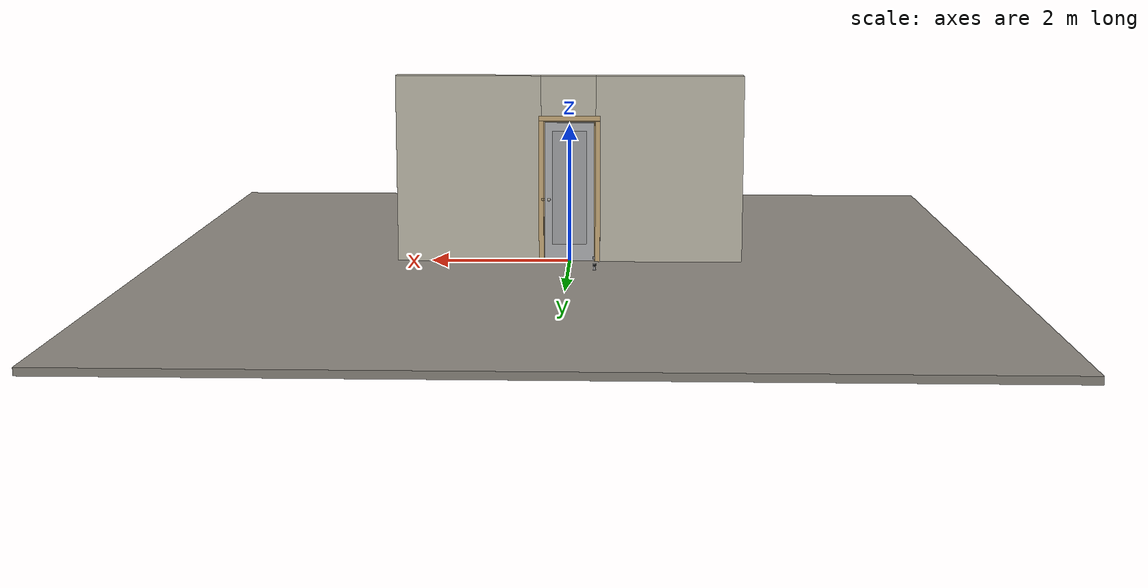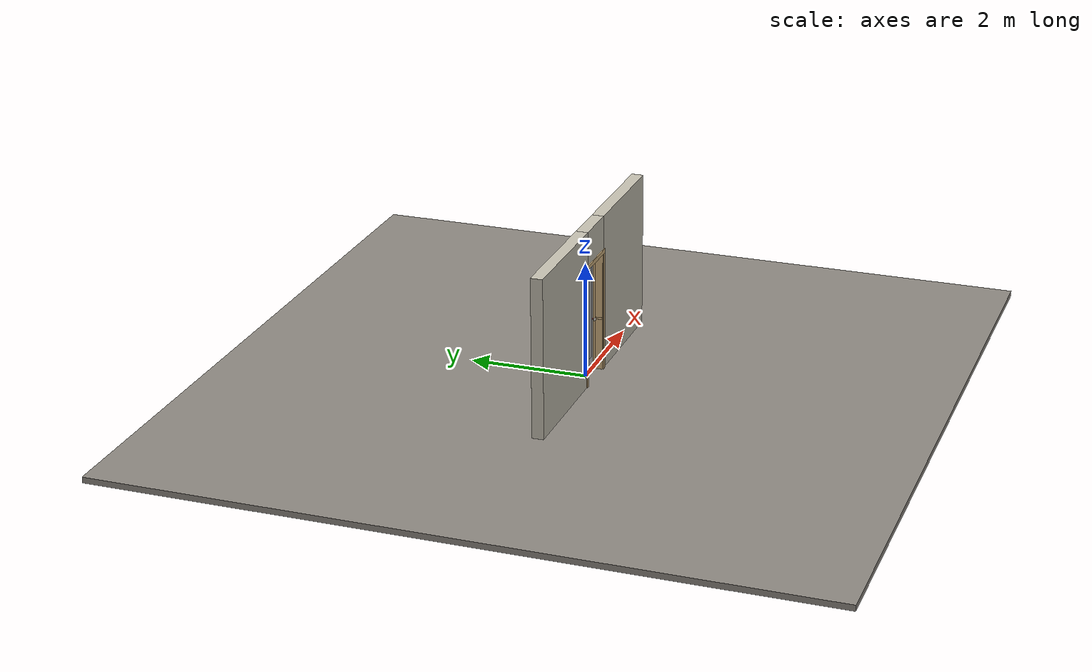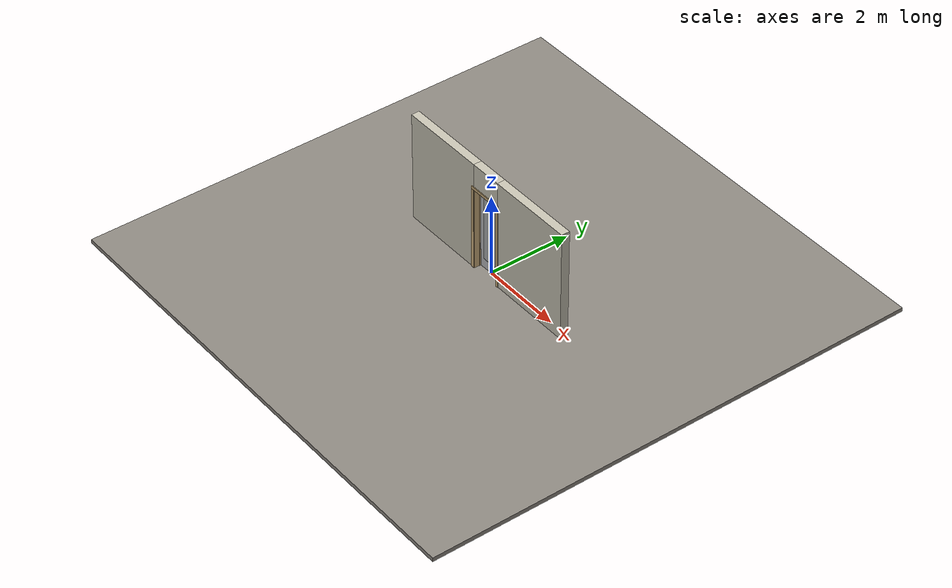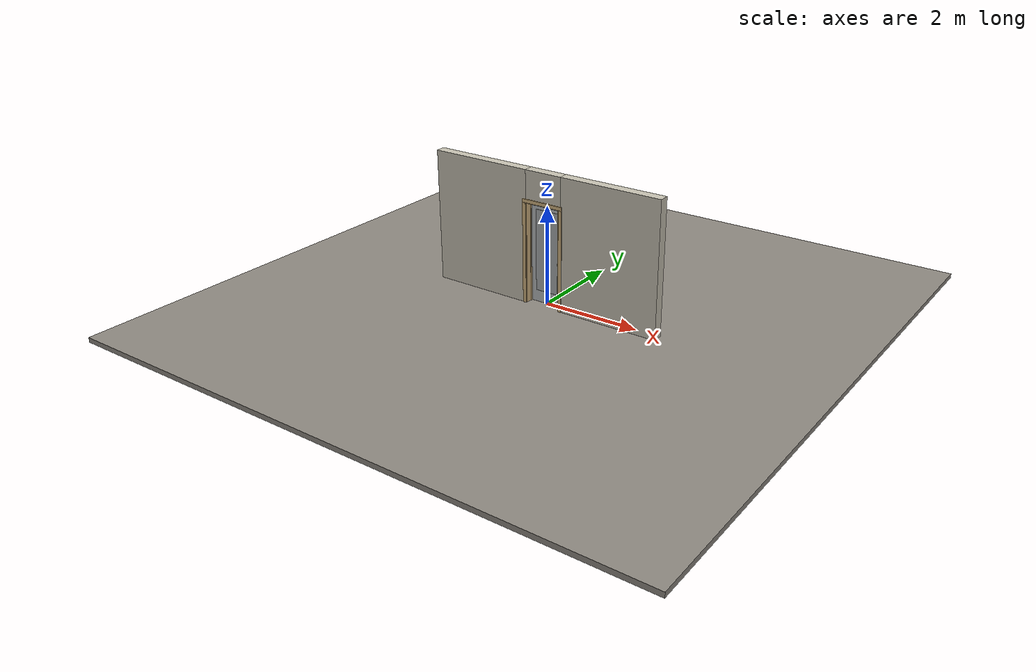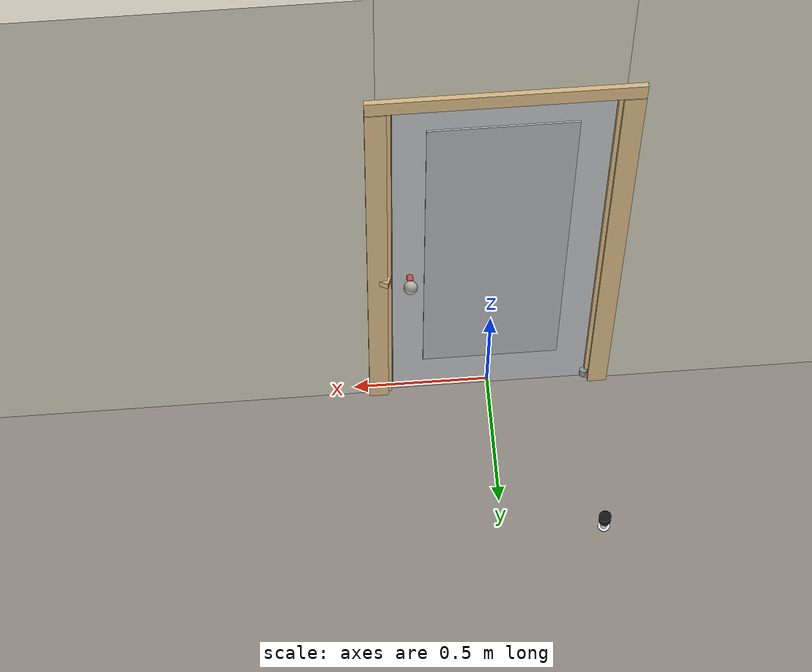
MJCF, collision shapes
<?xml version="1.0" ?>
<mujoco model="db0728_swing_single_full">
  <compiler angle="radian" meshdir="../../hardware" texturedir="../../textures" autolimits="true" inertiafromgeom="false"/>
  <option timestep="0.002" integrator="implicitfast" cone="elliptic" impratio="10" noslip_iterations="3">
    <flag multiccd="enable"/>
  </option>
  <size memory="16M"/>
  <default>
    <geom condim="4" solref="0.005 1" solimp="0.95 0.99 0.001"/>
    <joint solreflimit="0.005 1" solimplimit="0.95 0.99 0.001"/>
    <tendon solreflimit="0.005 1"/>
    <equality solref="0.002 1"/>
  </default>
  <visual>
    <headlight ambient="0.4 0.4 0.4" diffuse="0.7 0.7 0.7" specular="0.2 0.2 0.2"/>
    <quality shadowsize="4096"/>
    <map znear="0.01" zfar="60"/>
  </visual>
  <asset>
    <mesh name="hinge_c20a5829de" file="hinge_c20a5829de.obj"/>
    <mesh name="hinge_jamb_20499e6581" file="hinge_jamb_20499e6581.obj"/>
    <mesh name="knob_248d825e64" file="knob_248d825e64.obj"/>
    <mesh name="knob_d1888f6f03" file="knob_d1888f6f03.obj"/>
    <material name="mat_floor" rgba="0.55 0.53 0.5 1" specular="0.2" shininess="0.15" reflectance="0"/>
    <material name="mat_wall" rgba="0.78 0.76 0.7 1" specular="0.2" shininess="0.1" reflectance="0"/>
    <material name="mat_hinge" rgba="0.55 0.56 0.58 1" specular="0.8" shininess="0.55" reflectance="0.4"/>
    <material name="mat_leaf" rgba="0.72 0.73 0.74 1" specular="0.2" shininess="0.52" reflectance="0"/>
    <material name="mat_leaf_panel" rgba="0.662 0.672 0.681 1" specular="0.2" shininess="0.52" reflectance="0"/>
    <material name="mat_op_nickel_satin" rgba="0.72 0.7 0.66 1" specular="0.8" shininess="0.65" reflectance="0.4"/>
    <material name="mat_trim" rgba="0.85 0.66 0.3 1" specular="0.8" shininess="0.75" reflectance="0.4"/>
    <material name="mat_bolt" rgba="0.85 0.66 0.3 1" specular="0.8" shininess="0.75" reflectance="0.4"/>
    <material name="mat_frame" rgba="0.82 0.7 0.5 1" specular="0.2" shininess="0.45" reflectance="0"/>
    <material name="mat_bumper_stop" rgba="0.08 0.08 0.08 1" specular="0.2" shininess="0.1" reflectance="0"/>
    <material name="mat_stop_base" rgba="0.9 0.9 0.92 1" specular="0.8" shininess="0.9" reflectance="0.4"/>
    <texture name="skybox" type="skybox" builtin="gradient" rgb1="0.6 0.7 0.85" rgb2="0.9 0.92 0.95" width="256" height="256"/>
  </asset>
  <worldbody>
    <light name="sun" pos="1.5 -2.5 4" dir="-0.3 0.5 -0.8" directional="true" diffuse="0.8 0.8 0.8" specular="0.3 0.3 0.3" castshadow="true"/>
    <light name="fill" pos="-1.5 2.5 3" dir="0.3 -0.5 -0.7" directional="true" diffuse="0.35 0.35 0.4" castshadow="false"/>
    <camera name="robot_view" pos="0 -2.617687 1.734312" xyaxes="1 0 0 0 0.26963 0.962964" fovy="52"/>
    <camera name="far_view" pos="0 2.466687 1.734312" xyaxes="-1 0 0 0 -0.26963 0.962964" fovy="52"/>
    <camera name="iso" pos="1.932062 -2.210938 2.141063" xyaxes="0.741536 0.670913 0 -0.242917 0.268487 0.932151" fovy="46"/>
    <camera name="detail_handle" pos="0.475 -0.864 1.194" xyaxes="0.97561 0.219512 0 -0.070934 0.315262 0.94635" fovy="38"/>
    <geom name="floor" type="box" size="6 6 0.05" pos="0 0 -0.05" material="mat_floor" group="0" contype="1" conaffinity="1" friction="0.8 0.005 0.0001" density="2400"/>
    <geom name="wall_left" type="box" size="1.061 0.1 1.35" pos="-1.439 -0.0755 1.35" material="mat_wall" group="0" contype="1" conaffinity="1" friction="0.6 0.005 0.0001" density="800"/>
    <geom name="wall_right" type="box" size="1.046 0.1 1.35" pos="1.454 -0.0755 1.35" material="mat_wall" group="0" contype="1" conaffinity="1" friction="0.6 0.005 0.0001" density="800"/>
    <geom name="wall_header" type="box" size="0.393 0.1 0.303" pos="0.015 -0.0755 2.397" material="mat_wall" group="0" contype="1" conaffinity="1" friction="0.6 0.005 0.0001" density="800"/>
    <geom name="hinge_0_jamb" type="mesh" mesh="hinge_jamb_20499e6581" pos="-0.356 0.0245 0.259" quat="0 1 0 0" material="mat_hinge" group="1" contype="0" conaffinity="0" density="7850"/>
    <geom name="hinge_1_jamb" type="mesh" mesh="hinge_jamb_20499e6581" pos="-0.356 0.0245 1.8506" quat="0 1 0 0" material="mat_hinge" group="1" contype="0" conaffinity="0" density="7850"/>
    <geom name="jamb_hinge" type="box" size="0.0095 0.1 1.0225" pos="-0.3685 -0.0755 1.0225" material="mat_frame" group="0" contype="1" conaffinity="1" friction="0.6 0.005 0.0001" density="400"/>
    <geom name="strike_914_wall_n" type="box" size="0.0245 0.083825 0.0167" pos="0.3835 -0.091675 0.914" material="mat_frame" group="0" contype="1" conaffinity="1" friction="0.6 0.005 0.0001" density="400"/>
    <geom name="strike_914_wall_p" type="box" size="0.0245 0.008 0.0167" pos="0.3835 0.01585 0.914" material="mat_frame" group="0" contype="1" conaffinity="1" friction="0.6 0.005 0.0001" density="400"/>
    <geom name="strike_914_ramp" type="box" size="0.0245 0.01649 0.0167" pos="0.388136 0.028673 0.914" quat="0.977148 0 0 -0.212558" material="mat_frame" group="0" contype="1" conaffinity="1" friction="0.12 0.005 0.0001" density="400"/>
    <geom name="strike_914_back" type="box" size="0.01615 0.00785 0.0167" pos="0.39185 0 0.914" material="mat_frame" group="0" contype="1" conaffinity="1" friction="0.6 0.005 0.0001" density="400"/>
    <geom name="jamb_strike_0" type="box" size="0.0245 0.1 0.44865" pos="0.3835 -0.0755 0.44865" material="mat_frame" group="0" contype="1" conaffinity="1" friction="0.6 0.005 0.0001" density="400"/>
    <geom name="jamb_strike_1" type="box" size="0.0245 0.1 0.55715" pos="0.3835 -0.0755 1.48785" material="mat_frame" group="0" contype="1" conaffinity="1" friction="0.6 0.005 0.0001" density="400"/>
    <geom name="jamb_head" type="box" size="0.393 0.1 0.0095" pos="0.015 -0.0755 2.0545" material="mat_frame" group="0" contype="1" conaffinity="1" friction="0.6 0.005 0.0001" density="400"/>
    <geom name="head_stud" type="box" size="0.393 0.1 0.015" pos="0.015 -0.0755 2.079" material="mat_wall" group="0" contype="1" conaffinity="1" friction="0.6 0.005 0.0001" density="500"/>
    <geom name="stop_hinge" type="box" size="0.0055 0.016 1.0225" pos="-0.3535 -0.034 1.0225" material="mat_frame" group="0" contype="1" conaffinity="1" friction="0.6 0.005 0.0001" density="400"/>
    <geom name="stop_strike" type="box" size="0.0055 0.016 1.0225" pos="0.3535 -0.034 1.0225" material="mat_frame" group="0" contype="1" conaffinity="1" friction="0.6 0.005 0.0001" density="400"/>
    <geom name="stop_head" type="box" size="0.359 0.016 0.0055" pos="0 -0.034 2.0395" material="mat_frame" group="0" contype="1" conaffinity="1" friction="0.6 0.005 0.0001" density="400"/>
    <geom name="casing_l_n" type="box" size="0.035 0.008 1.032" pos="-0.408 -0.1835 1.0225" material="mat_frame" group="2" contype="0" conaffinity="0" density="400"/>
    <geom name="casing_r_n" type="box" size="0.035 0.008 1.032" pos="0.408 -0.1835 1.0225" material="mat_frame" group="2" contype="0" conaffinity="0" density="400"/>
    <geom name="casing_h_n" type="box" size="0.443 0.008 0.035" pos="0 -0.1835 2.094" material="mat_frame" group="2" contype="0" conaffinity="0" density="400"/>
    <geom name="casing_l_p" type="box" size="0.035 0.008 1.032" pos="-0.408 0.0325 1.0225" material="mat_frame" group="2" contype="0" conaffinity="0" density="400"/>
    <geom name="casing_r_p" type="box" size="0.035 0.008 1.032" pos="0.408 0.0325 1.0225" material="mat_frame" group="2" contype="0" conaffinity="0" density="400"/>
    <geom name="casing_h_p" type="box" size="0.443 0.008 0.035" pos="0 0.0325 2.094" material="mat_frame" group="2" contype="0" conaffinity="0" density="400"/>
    <geom name="door_stop_base" type="cylinder" size="0.022 0.003" pos="-0.372 0.62885 0.003" material="mat_stop_base" group="0" contype="1" conaffinity="1" friction="0.6 0.005 0.0001" density="7850"/>
    <geom name="door_stop_post" type="cylinder" size="0.012 0.0245" pos="-0.372 0.62885 0.0305" material="mat_stop_base" group="0" contype="1" conaffinity="1" friction="0.6 0.005 0.0001" density="7850"/>
    <geom name="door_stop_bumper" type="cylinder" size="0.022 0.02" pos="-0.372 0.62885 0.075" material="mat_bumper_stop" group="0" contype="1" conaffinity="1" friction="0.6 0.005 0.0001" density="1100"/>
    <site name="approach_point" pos="0 -1.5 0" quat="1 0 0 0" size="0.05" rgba="0.2 0.9 0.2 0.5" group="4"/>
    <site name="goal_point" pos="0 1.5 0" quat="1 0 0 0" size="0.05" rgba="0.2 0.9 0.2 0.5" group="4"/>
    <site name="door_plane_center" pos="0 0 1.0225" quat="1 0 0 0" size="0.02" rgba="0.2 0.9 0.2 0.5" group="4"/>
    <body name="leaf_riser" pos="-0.359 0 0">
      <inertial pos="0.003 0.0245 0.055" mass="0.174012" quat="0.707107 0 0.707107 0" diaginertia="0.000017053 0.00002732 0.00002732"/>
      <joint name="leaf_rise" type="slide" axis="0 0 1" limited="true" range="0 0.0176" damping="1" armature="0.5"/>
      <geom name="leaf_riser_marker" type="cylinder" size="0.014 0.018" pos="0.003 0.0245 0.055" material="mat_hinge" group="1" contype="0" conaffinity="0" density="7850"/>
      <body name="leaf" pos="0 0 0">
        <inertial pos="0.347685 0.000523 1.020834" mass="12.0294" quat="0.500675 0.498632 -0.501342 0.499348" diaginertia="0.539603406 4.204449372 4.741369754"/>
        <joint name="leaf_hinge" type="hinge" axis="0 0 1" pos="0.003 0.0245 0" limited="true" range="0 1.570796" damping="0.143782" frictionloss="6.304379" armature="0.02"/>
        <geom name="leaf_slab" type="box" size="0.3555 0.0175 1.0108" pos="0.3585 0 1.0198" material="mat_leaf" group="0" contype="1" conaffinity="1" friction="0.35 0.005 0.0001" density="1"/>
        <geom name="leaf_panel_0_n" type="box" size="0.2455 0.003 0.829072" pos="0.3585 -0.0205 1.080448" material="mat_leaf_panel" group="1" contype="0" conaffinity="0" density="1"/>
        <geom name="leaf_panel_0_p" type="box" size="0.2455 0.003 0.829072" pos="0.3585 0.0205 1.080448" material="mat_leaf_panel" group="1" contype="0" conaffinity="0" density="1"/>
        <geom name="hinge_0" type="mesh" mesh="hinge_c20a5829de" pos="0.003 0.0245 0.259" quat="0 1 0 0" material="mat_hinge" group="1" contype="0" conaffinity="0" density="7850"/>
        <geom name="hinge_1" type="mesh" mesh="hinge_c20a5829de" pos="0.003 0.0245 1.8506" quat="0 1 0 0" material="mat_hinge" group="1" contype="0" conaffinity="0" density="7850"/>
        <geom name="leaf_latch_bolt_faceplate" type="box" size="0.0006 0.01235 0.0267" pos="0.7134 0 0.914" material="mat_bolt" group="1" contype="0" conaffinity="0" density="8500"/>
        <site name="leaf_edge_mid" pos="0.714 0 1.0108" quat="1 0 0 0" size="0.02" rgba="0.2 0.9 0.2 0.5" group="4"/>
        <body name="leaf_handle" pos="0.654 0 0.914">
          <inertial pos="0 0.000216 0" mass="1.146661" quat="0.5 0.5 0.5 0.5" diaginertia="0.000312402 0.003728942 0.003728942"/>
          <joint name="leaf_handle_hinge" type="hinge" axis="0 -1 0" limited="true" range="0 0.07" damping="0.143613" frictionloss="0.038" stiffness="0.5" springref="-0.5" armature="0.01"/>
          <geom name="leaf_handle_spindle" type="cylinder" size="0.006 0.0255" pos="0 0 0" quat="0.707107 -0.707107 0 0" material="mat_op_nickel_satin" group="1" contype="0" conaffinity="0" density="7850"/>
          <geom name="leaf_handle_knob_n" type="mesh" mesh="knob_d1888f6f03" pos="0 -0.0175 0" quat="0.707107 0.707107 0 0" material="mat_op_nickel_satin" group="1" contype="0" conaffinity="0" density="3000"/>
          <geom name="leaf_handle_knob_col_n" type="sphere" size="0.0243" pos="0 -0.064 0" material="mat_op_nickel_satin" group="0" contype="1" conaffinity="1" friction="0.9 0.01 0.0001" density="3000"/>
          <geom name="leaf_handle_knob_neck_n" type="cylinder" size="0.011 0.012" pos="0 -0.0295 0" quat="0.707107 -0.707107 0 0" material="mat_op_nickel_satin" group="3" contype="1" conaffinity="1" rgba="0.8 0.3 0.3 0.25" friction="0.6 0.005 0.0001" density="3000"/>
          <geom name="leaf_handle_knob_p" type="mesh" mesh="knob_248d825e64" pos="0 0.0175 0" quat="-0.707107 0.707107 0 0" material="mat_op_nickel_satin" group="1" contype="0" conaffinity="0" density="3000"/>
          <geom name="leaf_handle_knob_col_p" type="sphere" size="0.0243" pos="0 0.064 0" material="mat_op_nickel_satin" group="0" contype="1" conaffinity="1" friction="0.9 0.01 0.0001" density="3000"/>
          <geom name="leaf_handle_knob_neck_p" type="cylinder" size="0.011 0.012" pos="0 0.0295 0" quat="0.707107 -0.707107 0 0" material="mat_op_nickel_satin" group="3" contype="1" conaffinity="1" rgba="0.8 0.3 0.3 0.25" friction="0.6 0.005 0.0001" density="3000"/>
          <site name="leaf_handle_grip_n" pos="0 -0.064 0" quat="1 0 0 0" size="0.012" rgba="0.2 0.9 0.2 0.5" group="4"/>
          <site name="leaf_handle_grip_p" pos="0 0.064 0" quat="1 0 0 0" size="0.012" rgba="0.2 0.9 0.2 0.5" group="4"/>
        </body>
        <body name="leaf_latch_bolt" pos="0.714 0 0.914">
          <inertial pos="-0.00865 0 0" mass="0.041419" quat="0.92388 -0.382683 0 0" diaginertia="0.000000798 0.000005598 0.000005598"/>
          <joint name="leaf_latch_bolt_slide" type="slide" axis="-1 0 0" limited="true" range="0 0.0127" damping="2" frictionloss="0.3" stiffness="300" springref="-0.008333" armature="0.1"/>
          <geom name="leaf_latch_bolt_capsule" type="capsule" size="0.00635 0.015" pos="-0.00865 0 0" quat="0.707107 0 0.707107 0" material="mat_bolt" group="0" contype="1" conaffinity="1" friction="0.2 0.005 0.0001" density="8500"/>
        </body>
      </body>
    </body>
  </worldbody>
  <tendon>
    <fixed name="leaf_latch_bolt_coupling" limited="true" range="0 10">
      <joint joint="leaf_latch_bolt_slide" coef="1"/>
      <joint joint="leaf_handle_hinge" coef="-0.015679"/>
    </fixed>
  </tendon>
  <equality>
    <joint name="leaf_rise_couple" joint1="leaf_rise" joint2="leaf_hinge" polycoef="0 0.005093 0 0 0" active="true"/>
  </equality>
  <sensor>
    <jointpos name="leaf_hinge_pos" joint="leaf_hinge"/>
    <jointvel name="leaf_hinge_vel" joint="leaf_hinge"/>
    <jointpos name="leaf_handle_hinge_pos" joint="leaf_handle_hinge"/>
    <jointvel name="leaf_handle_hinge_vel" joint="leaf_handle_hinge"/>
    <jointpos name="leaf_latch_bolt_slide_pos" joint="leaf_latch_bolt_slide"/>
    <jointvel name="leaf_latch_bolt_slide_vel" joint="leaf_latch_bolt_slide"/>
  </sensor>
</mujoco>
